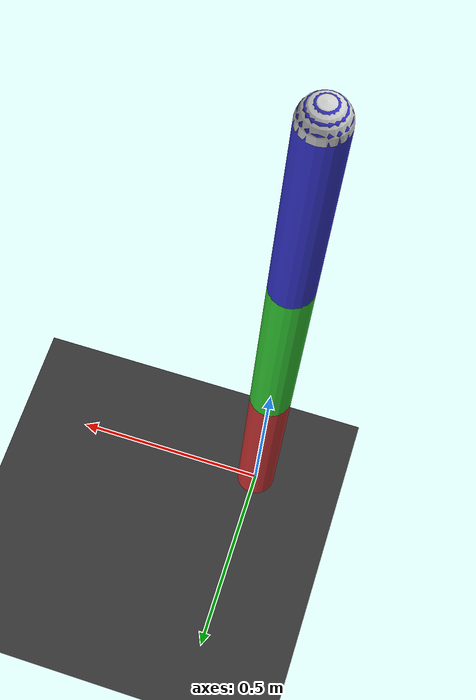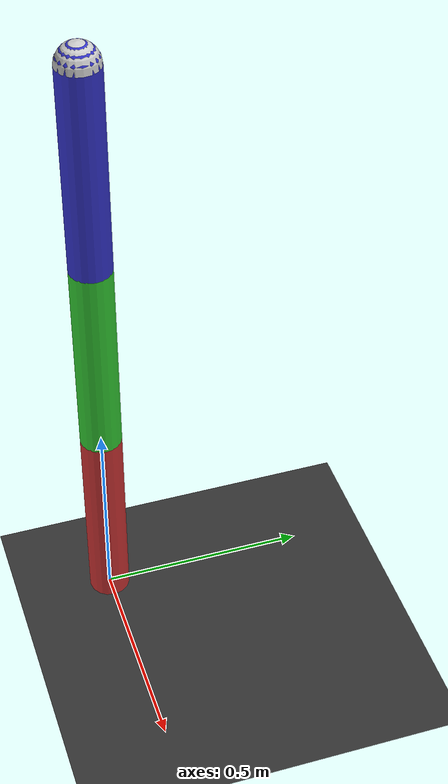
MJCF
<mujoco model="manipulador">

    <option gravity="0 0 -9.81" timestep="0.002"/>

    <asset>
        <texture type="skybox" builtin="gradient" rgb1="0.3 0.5 0.7" rgb2="0 0 0" width="512" height="512"/>
    </asset>

    <worldbody>

            <geom name="chao" type="plane" size="5 5 0.1" rgba="0.2 0.2 0.2 1"/>

            <light directional="true" diffuse=".8 .8 .8" specular=".2 .2 .2" pos="0 0 5" dir="0 0 -1"/>

            <body name = "base" pos = "0 0 0">

                <body name = "corpo" pos = "0 0 0.25">
                    <geom name = "link1" type = "capsule" size = "0.05 0.25" rgba = "0.8 0.2 0.2 1" density = "1255"/>
                    <joint name = "junta1" type = "hinge" pos = "0 0 -0.25" axis = "0 0 1" frictionloss = "50   "/>

                    <body name = "link2" pos = "0 0 0.5">
                        <geom name = "link2" type = "capsule" size = "0.05 0.25" rgba = "0.2 0.8 0.2 1" density = "1255"/>
                        <joint name = "junta2" type = "hinge" pos = "0 0 -0.25" axis = "1 0 0" frictionloss = "50"/>

                        <body name = "link3" pos = "0 0 0.5">
                            <geom name = "link3" type = "capsule" size = "0.05 0.25" rgba = "0.2 0.2 0.8 1" density = "1255"/>
                            <joint name = "junta3" type = "hinge" pos = "0 0 -0.25" axis = "1 0 0" frictionloss = "50"/>
                            <body name = "extremidade" pos = "0 0 0.25">
                                <geom name = "extremidade" type = "sphere" size = "0.05" rgba = "0.8 0.8 0.8 1" density = "0"/>
                            </body>
                        </body>
                    </body>
                </body>

            </body>
    </worldbody>

    <actuator>
        <position name="motor1" joint="junta1" kp = "1000" />
        <position name="motor2" joint="junta2" kp = "10000"/>
        <position name="motor3" joint="junta3" kp = "1000" />
    </actuator>
</mujoco>
